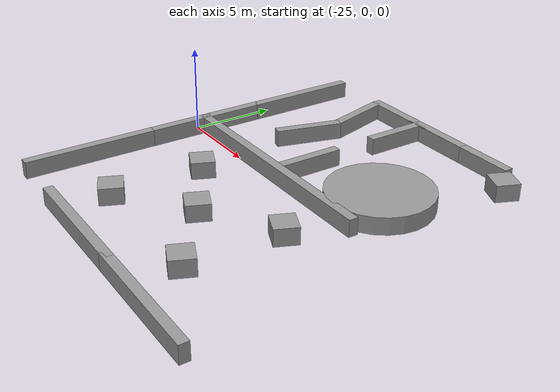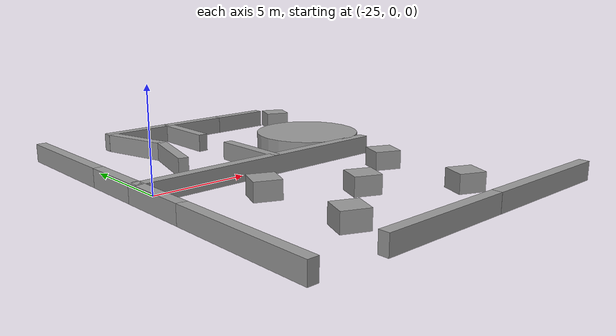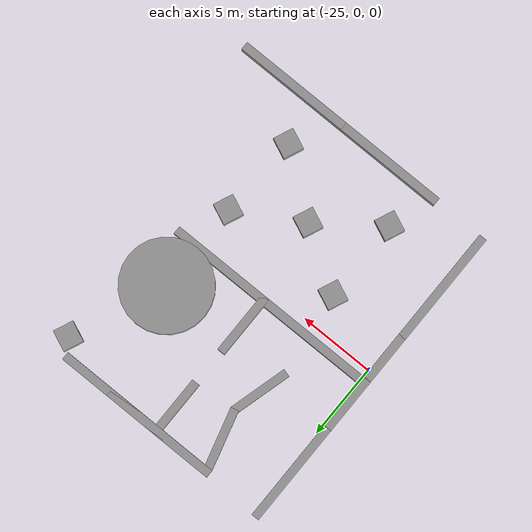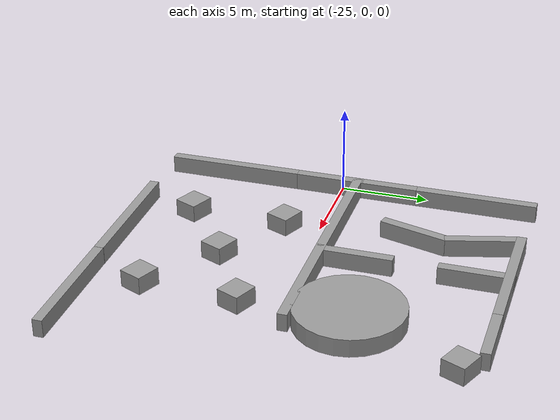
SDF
<sdf version="1.6">
 <model name="Maze01">
  <link name="link_4_clone_0_clone">
   <pose>-17.8012 -10.6509 9e-06 0 -0 0</pose>
   <inertial>
    <mass>4.30693</mass>
    <inertia><ixx>0.46587</ixx><ixy>0</ixy><ixz>0</ixz><iyy>22.6991</iyy><iyz>0</iyz><izz>22.4471</izz></inertia>
   </inertial>
   <visual name="visual">
    <geometry><box><size>7.88951 0.545905 1</size></box></geometry>
    <material>
     <lighting>1</lighting>
     <script><uri>file://media/materials/scripts/gazebo.material</uri><name>Gazebo/Grey</name></script>
     <ambient>0.3 0.3 0.3 1</ambient>
     <diffuse>0.7 0.7 0.7 1</diffuse>
     <specular>0.01 0.01 0.01 1</specular>
     <emissive>0 0 0 1</emissive>
     <shader type="pixel"/>
    </material>
   </visual>
   <collision name="collision">
    <geometry><box><size>7.88951 0.545905 1</size></box></geometry>
    <surface>
     <friction>
      <ode><mu>1</mu><mu2>1</mu2><fdir1>0 0 0</fdir1><slip1>0</slip1><slip2>0</slip2></ode>
      <torsional>
       <coefficient>1</coefficient>
       <patch_radius>0</patch_radius>
       <surface_radius>0</surface_radius>
       <use_patch_radius>1</use_patch_radius>
       <ode><slip>0</slip></ode>
      </torsional>
     </friction>
     <bounce><restitution_coefficient>0</restitution_coefficient><threshold>1e+06</threshold></bounce>
     <contact>
      <collide_without_contact>0</collide_without_contact>
      <collide_without_contact_bitmask>1</collide_without_contact_bitmask>
      <collide_bitmask>1</collide_bitmask>
      <ode>
       <soft_cfm>0</soft_cfm>
       <soft_erp>0.2</soft_erp>
       <kp>1e+13</kp>
       <kd>1</kd>
       <max_vel>0.01</max_vel>
       <min_depth>0</min_depth>
      </ode>
      <bullet>
       <split_impulse>1</split_impulse>
       <split_impulse_penetration_threshold>-0.01</split_impulse_penetration_threshold>
       <soft_cfm>0</soft_cfm>
       <soft_erp>0.2</soft_erp>
       <kp>1e+13</kp>
       <kd>1</kd>
      </bullet>
     </contact>
    </surface>
   </collision>
  </link>
  <link name="link_4_clone_0_clone_clone">
   <pose>-17.57 11.05 9e-06 0 -0 0</pose>
   <inertial>
    <mass>4.30693</mass>
    <inertia><ixx>0.46587</ixx><ixy>0</ixy><ixz>0</ixz><iyy>22.6991</iyy><iyz>0</iyz><izz>22.4471</izz></inertia>
   </inertial>
   <visual name="visual">
    <geometry><box><size>7.88951 0.545905 1</size></box></geometry>
    <material>
     <lighting>1</lighting>
     <script><uri>file://media/materials/scripts/gazebo.material</uri><name>Gazebo/Grey</name></script>
     <ambient>0.3 0.3 0.3 1</ambient>
     <diffuse>0.7 0.7 0.7 1</diffuse>
     <specular>0.01 0.01 0.01 1</specular>
     <emissive>0 0 0 1</emissive>
     <shader type="pixel"/>
    </material>
   </visual>
   <collision name="collision">
    <geometry><box><size>7.88951 0.545905 1</size></box></geometry>
    <surface>
     <friction>
      <ode><mu>1</mu><mu2>1</mu2><fdir1>0 0 0</fdir1><slip1>0</slip1><slip2>0</slip2></ode>
      <torsional>
       <coefficient>1</coefficient>
       <patch_radius>0</patch_radius>
       <surface_radius>0</surface_radius>
       <use_patch_radius>1</use_patch_radius>
       <ode><slip>0</slip></ode>
      </torsional>
     </friction>
     <bounce><restitution_coefficient>0</restitution_coefficient><threshold>1e+06</threshold></bounce>
     <contact>
      <collide_without_contact>0</collide_without_contact>
      <collide_without_contact_bitmask>1</collide_without_contact_bitmask>
      <collide_bitmask>1</collide_bitmask>
      <ode>
       <soft_cfm>0</soft_cfm>
       <soft_erp>0.2</soft_erp>
       <kp>1e+13</kp>
       <kd>1</kd>
       <max_vel>0.01</max_vel>
       <min_depth>0</min_depth>
      </ode>
      <bullet>
       <split_impulse>1</split_impulse>
       <split_impulse_penetration_threshold>-0.01</split_impulse_penetration_threshold>
       <soft_cfm>0</soft_cfm>
       <soft_erp>0.2</soft_erp>
       <kp>1e+13</kp>
       <kd>1</kd>
      </bullet>
     </contact>
    </surface>
   </collision>
  </link>
  <link name="link_4_clone_0_clone_clone_0">
   <pose>-14.0594 11.05 9e-06 0 -0 0</pose>
   <inertial>
    <mass>4.30693</mass>
    <inertia><ixx>0.46587</ixx><ixy>0</ixy><ixz>0</ixz><iyy>22.6991</iyy><iyz>0</iyz><izz>22.4471</izz></inertia>
   </inertial>
   <visual name="visual">
    <geometry><box><size>7.88951 0.545905 1</size></box></geometry>
    <material>
     <lighting>1</lighting>
     <script><uri>file://media/materials/scripts/gazebo.material</uri><name>Gazebo/Grey</name></script>
     <ambient>0.3 0.3 0.3 1</ambient>
     <diffuse>0.7 0.7 0.7 1</diffuse>
     <specular>0.01 0.01 0.01 1</specular>
     <emissive>0 0 0 1</emissive>
     <shader type="pixel"/>
    </material>
   </visual>
   <collision name="collision">
    <geometry><box><size>7.88951 0.545905 1</size></box></geometry>
    <surface>
     <friction>
      <ode><mu>1</mu><mu2>1</mu2><fdir1>0 0 0</fdir1><slip1>0</slip1><slip2>0</slip2></ode>
      <torsional>
       <coefficient>1</coefficient>
       <patch_radius>0</patch_radius>
       <surface_radius>0</surface_radius>
       <use_patch_radius>1</use_patch_radius>
       <ode><slip>0</slip></ode>
      </torsional>
     </friction>
     <bounce><restitution_coefficient>0</restitution_coefficient><threshold>1e+06</threshold></bounce>
     <contact>
      <collide_without_contact>0</collide_without_contact>
      <collide_without_contact_bitmask>1</collide_without_contact_bitmask>
      <collide_bitmask>1</collide_bitmask>
      <ode>
       <soft_cfm>0</soft_cfm>
       <soft_erp>0.2</soft_erp>
       <kp>1e+13</kp>
       <kd>1</kd>
       <max_vel>0.01</max_vel>
       <min_depth>0</min_depth>
      </ode>
      <bullet>
       <split_impulse>1</split_impulse>
       <split_impulse_penetration_threshold>-0.01</split_impulse_penetration_threshold>
       <soft_cfm>0</soft_cfm>
       <soft_erp>0.2</soft_erp>
       <kp>1e+13</kp>
       <kd>1</kd>
      </bullet>
     </contact>
    </surface>
   </collision>
  </link>
  <link name="link_4_clone_0_clone_clone_1">
   <pose>-10.458 -10.6545 9e-06 0 -0 0</pose>
   <inertial>
    <mass>4.30693</mass>
    <inertia><ixx>0.46587</ixx><ixy>0</ixy><ixz>0</ixz><iyy>22.6991</iyy><iyz>0</iyz><izz>22.4471</izz></inertia>
   </inertial>
   <visual name="visual">
    <geometry><box><size>7.88951 0.545905 1</size></box></geometry>
    <material>
     <lighting>1</lighting>
     <script><uri>file://media/materials/scripts/gazebo.material</uri><name>Gazebo/Grey</name></script>
     <ambient>0.3 0.3 0.3 1</ambient>
     <diffuse>0.7 0.7 0.7 1</diffuse>
     <specular>0.01 0.01 0.01 1</specular>
     <emissive>0 0 0 1</emissive>
     <shader type="pixel"/>
    </material>
   </visual>
   <collision name="collision">
    <geometry><box><size>7.88951 0.545905 1</size></box></geometry>
    <surface>
     <friction>
      <ode><mu>1</mu><mu2>1</mu2><fdir1>0 0 0</fdir1><slip1>0</slip1><slip2>0</slip2></ode>
      <torsional>
       <coefficient>1</coefficient>
       <patch_radius>0</patch_radius>
       <surface_radius>0</surface_radius>
       <use_patch_radius>1</use_patch_radius>
       <ode><slip>0</slip></ode>
      </torsional>
     </friction>
     <bounce><restitution_coefficient>0</restitution_coefficient><threshold>1e+06</threshold></bounce>
     <contact>
      <collide_without_contact>0</collide_without_contact>
      <collide_without_contact_bitmask>1</collide_without_contact_bitmask>
      <collide_bitmask>1</collide_bitmask>
      <ode>
       <soft_cfm>0</soft_cfm>
       <soft_erp>0.2</soft_erp>
       <kp>1e+13</kp>
       <kd>1</kd>
       <max_vel>0.01</max_vel>
       <min_depth>0</min_depth>
      </ode>
      <bullet>
       <split_impulse>1</split_impulse>
       <split_impulse_penetration_threshold>-0.01</split_impulse_penetration_threshold>
       <soft_cfm>0</soft_cfm>
       <soft_erp>0.2</soft_erp>
       <kp>1e+13</kp>
       <kd>1</kd>
      </bullet>
     </contact>
    </surface>
   </collision>
  </link>
  <link name="link_4_clone_1">
   <pose>-25.338 -6.80 9e-06 0 0 -1.57</pose>
   <inertial>
    <mass>4.30693</mass>
    <inertia><ixx>0.46587</ixx><ixy>0</ixy><ixz>0</ixz><iyy>22.6991</iyy><iyz>0</iyz><izz>22.4471</izz></inertia>
   </inertial>
   <visual name="visual">
    <geometry><box><size>7.88951 0.545905 1</size></box></geometry>
    <material>
     <lighting>1</lighting>
     <script><uri>file://media/materials/scripts/gazebo.material</uri><name>Gazebo/Grey</name></script>
     <ambient>0.3 0.3 0.3 1</ambient>
     <diffuse>0.7 0.7 0.7 1</diffuse>
     <specular>0.01 0.01 0.01 1</specular>
     <emissive>0 0 0 1</emissive>
     <shader type="pixel"/>
    </material>
   </visual>
   <collision name="collision">
    <geometry><box><size>7.88951 0.545905 1</size></box></geometry>
    <surface>
     <friction>
      <ode><mu>1</mu><mu2>1</mu2><fdir1>0 0 0</fdir1><slip1>0</slip1><slip2>0</slip2></ode>
      <torsional>
       <coefficient>1</coefficient>
       <patch_radius>0</patch_radius>
       <surface_radius>0</surface_radius>
       <use_patch_radius>1</use_patch_radius>
       <ode><slip>0</slip></ode>
      </torsional>
     </friction>
     <bounce><restitution_coefficient>0</restitution_coefficient><threshold>1e+06</threshold></bounce>
     <contact>
      <collide_without_contact>0</collide_without_contact>
      <collide_without_contact_bitmask>1</collide_without_contact_bitmask>
      <collide_bitmask>1</collide_bitmask>
      <ode>
       <soft_cfm>0</soft_cfm>
       <soft_erp>0.2</soft_erp>
       <kp>1e+13</kp>
       <kd>1</kd>
       <max_vel>0.01</max_vel>
       <min_depth>0</min_depth>
      </ode>
      <bullet>
       <split_impulse>1</split_impulse>
       <split_impulse_penetration_threshold>-0.01</split_impulse_penetration_threshold>
       <soft_cfm>0</soft_cfm>
       <soft_erp>0.2</soft_erp>
       <kp>1e+13</kp>
       <kd>1</kd>
      </bullet>
     </contact>
    </surface>
   </collision>
  </link>
  <link name="long_partition">
   <pose>-18 0.76 9e-06 0 0 -3.14</pose>
   <inertial>
    <mass>4.30693</mass>
    <inertia><ixx>0.46587</ixx><ixy>0</ixy><ixz>0</ixz><iyy>22.6991</iyy><iyz>0</iyz><izz>22.4471</izz></inertia>
   </inertial>
   <visual name="visual">
    <geometry><box><size>15 0.545905 1</size></box></geometry>
    <material>
     <lighting>1</lighting>
     <script><uri>file://media/materials/scripts/gazebo.material</uri><name>Gazebo/Grey</name></script>
     <ambient>0.3 0.3 0.3 1</ambient>
     <diffuse>0.7 0.7 0.7 1</diffuse>
     <specular>0.01 0.01 0.01 1</specular>
     <emissive>0 0 0 1</emissive>
     <shader type="pixel"/>
    </material>
   </visual>
   <collision name="collision">
    <geometry><box><size>15 0.545905 1</size></box></geometry>
    <surface>
     <friction>
      <ode><mu>1</mu><mu2>1</mu2><fdir1>0 0 0</fdir1><slip1>0</slip1><slip2>0</slip2></ode>
      <torsional>
       <coefficient>1</coefficient>
       <patch_radius>0</patch_radius>
       <surface_radius>0</surface_radius>
       <use_patch_radius>1</use_patch_radius>
       <ode><slip>0</slip></ode>
      </torsional>
     </friction>
     <bounce><restitution_coefficient>0</restitution_coefficient><threshold>1e+06</threshold></bounce>
     <contact>
      <collide_without_contact>0</collide_without_contact>
      <collide_without_contact_bitmask>1</collide_without_contact_bitmask>
      <collide_bitmask>1</collide_bitmask>
      <ode>
       <soft_cfm>0</soft_cfm>
       <soft_erp>0.2</soft_erp>
       <kp>1e+13</kp>
       <kd>1</kd>
       <max_vel>0.01</max_vel>
       <min_depth>0</min_depth>
      </ode>
      <bullet>
       <split_impulse>1</split_impulse>
       <split_impulse_penetration_threshold>-0.01</split_impulse_penetration_threshold>
       <soft_cfm>0</soft_cfm>
       <soft_erp>0.2</soft_erp>
       <kp>1e+13</kp>
       <kd>1</kd>
      </bullet>
     </contact>
    </surface>
   </collision>
  </link>
  <link name="partition_1">
   <pose>-25.337999 7.825 9e-06 0 0 -1.57</pose>
   <inertial>
    <mass>2.3361</mass>
    <inertia><ixx>0.25269</ixx><ixy>0</ixy><ixz>0</ixz><iyy>3.75965</iyy><iyz>0</iyz><izz>3.62299</izz></inertia>
   </inertial>
   <visual name="visual">
    <geometry><box><size>7 0.545905 1</size></box></geometry>
    <material>
     <lighting>1</lighting>
     <script><uri>file://media/materials/scripts/gazebo.material</uri><name>Gazebo/Grey</name></script>
     <ambient>0.3 0.3 0.3 1</ambient>
     <diffuse>0.7 0.7 0.7 1</diffuse>
     <specular>0.01 0.01 0.01 1</specular>
     <emissive>0 0 0 1</emissive>
     <shader type="pixel"/>
    </material>
   </visual>
   <collision name="collision">
    <geometry><box><size>7 0.545905 1</size></box></geometry>
    <surface>
     <friction>
      <ode><mu>1</mu><mu2>1</mu2><fdir1>0 0 0</fdir1><slip1>0</slip1><slip2>0</slip2></ode>
      <torsional>
       <coefficient>1</coefficient>
       <patch_radius>0</patch_radius>
       <surface_radius>0</surface_radius>
       <use_patch_radius>1</use_patch_radius>
       <ode><slip>0</slip></ode>
      </torsional>
     </friction>
     <bounce><restitution_coefficient>0</restitution_coefficient><threshold>1e+06</threshold></bounce>
     <contact>
      <collide_without_contact>0</collide_without_contact>
      <collide_without_contact_bitmask>1</collide_without_contact_bitmask>
      <collide_bitmask>1</collide_bitmask>
      <ode>
       <soft_cfm>0</soft_cfm>
       <soft_erp>0.2</soft_erp>
       <kp>1e+13</kp>
       <kd>1</kd>
       <max_vel>0.01</max_vel>
       <min_depth>0</min_depth>
      </ode>
      <bullet>
       <split_impulse>1</split_impulse>
       <split_impulse_penetration_threshold>-0.01</split_impulse_penetration_threshold>
       <soft_cfm>0</soft_cfm>
       <soft_erp>0.2</soft_erp>
       <kp>1e+13</kp>
       <kd>1</kd>
      </bullet>
     </contact>
    </surface>
   </collision>
  </link>
  <link name="partition_2">
   <pose>-17.335 2.70 9e-06 0 0 -1.57</pose>
   <inertial>
    <mass>2.3361</mass>
    <inertia><ixx>0.25269</ixx><ixy>0</ixy><ixz>0</ixz><iyy>3.75965</iyy><iyz>0</iyz><izz>3.62299</izz></inertia>
   </inertial>
   <visual name="visual">
    <geometry><box><size>4.27931 0.545905 1</size></box></geometry>
    <material>
     <lighting>1</lighting>
     <script><uri>file://media/materials/scripts/gazebo.material</uri><name>Gazebo/Grey</name></script>
     <ambient>0.3 0.3 0.3 1</ambient>
     <diffuse>0.7 0.7 0.7 1</diffuse>
     <specular>0.01 0.01 0.01 1</specular>
     <emissive>0 0 0 1</emissive>
     <shader type="pixel"/>
    </material>
   </visual>
   <collision name="collision">
    <geometry><box><size>4.27931 0.545905 1</size></box></geometry>
    <surface>
     <friction>
      <ode><mu>1</mu><mu2>1</mu2><fdir1>0 0 0</fdir1><slip1>0</slip1><slip2>0</slip2></ode>
      <torsional>
       <coefficient>1</coefficient>
       <patch_radius>0</patch_radius>
       <surface_radius>0</surface_radius>
       <use_patch_radius>1</use_patch_radius>
       <ode><slip>0</slip></ode>
      </torsional>
     </friction>
     <bounce><restitution_coefficient>0</restitution_coefficient><threshold>1e+06</threshold></bounce>
     <contact>
      <collide_without_contact>0</collide_without_contact>
      <collide_without_contact_bitmask>1</collide_without_contact_bitmask>
      <collide_bitmask>1</collide_bitmask>
      <ode>
       <soft_cfm>0</soft_cfm>
       <soft_erp>0.2</soft_erp>
       <kp>1e+13</kp>
       <kd>1</kd>
       <max_vel>0.01</max_vel>
       <min_depth>0</min_depth>
      </ode>
      <bullet>
       <split_impulse>1</split_impulse>
       <split_impulse_penetration_threshold>-0.01</split_impulse_penetration_threshold>
       <soft_cfm>0</soft_cfm>
       <soft_erp>0.2</soft_erp>
       <kp>1e+13</kp>
       <kd>1</kd>
      </bullet>
     </contact>
    </surface>
   </collision>
  </link>
  <link name="partition_3">
   <pose>-17.335 9.25 9e-06 0 0 -1.57</pose>
   <inertial>
    <mass>1.50003</mass>
    <inertia>
     <ixx>0.162255</ixx>
     <ixy>0</ixy>
     <ixz>0</ixz>
     <iyy>1.06881</iyy>
     <iyz>0</iyz>
     <izz>0.981058</izz>
    </inertia>
   </inertial>
   <visual name="visual">
    <geometry><box><size>4 0.545905 1</size></box></geometry>
    <material>
     <lighting>1</lighting>
     <script><uri>file://media/materials/scripts/gazebo.material</uri><name>Gazebo/Grey</name></script>
     <ambient>0.3 0.3 0.3 1</ambient>
     <diffuse>0.7 0.7 0.7 1</diffuse>
     <specular>0.01 0.01 0.01 1</specular>
     <emissive>0 0 0 1</emissive>
     <shader type="pixel"/>
    </material>
   </visual>
   <collision name="collision">
    <geometry><box><size>4 0.545905 1</size></box></geometry>
    <surface>
     <friction>
      <ode><mu>1</mu><mu2>1</mu2><fdir1>0 0 0</fdir1><slip1>0</slip1><slip2>0</slip2></ode>
      <torsional>
       <coefficient>1</coefficient>
       <patch_radius>0</patch_radius>
       <surface_radius>0</surface_radius>
       <use_patch_radius>1</use_patch_radius>
       <ode><slip>0</slip></ode>
      </torsional>
     </friction>
     <bounce><restitution_coefficient>0</restitution_coefficient><threshold>1e+06</threshold></bounce>
     <contact>
      <collide_without_contact>0</collide_without_contact>
      <collide_without_contact_bitmask>1</collide_without_contact_bitmask>
      <collide_bitmask>1</collide_bitmask>
      <ode>
       <soft_cfm>0</soft_cfm>
       <soft_erp>0.2</soft_erp>
       <kp>1e+13</kp>
       <kd>1</kd>
       <max_vel>0.01</max_vel>
       <min_depth>0</min_depth>
      </ode>
      <bullet>
       <split_impulse>1</split_impulse>
       <split_impulse_penetration_threshold>-0.01</split_impulse_penetration_threshold>
       <soft_cfm>0</soft_cfm>
       <soft_erp>0.2</soft_erp>
       <kp>1e+13</kp>
       <kd>1</kd>
      </bullet>
     </contact>
    </surface>
   </collision>
  </link>
  <link name="partition_5">
   <pose>-20.725001 5.219298 9e-06 0 0 -1.838892</pose>
   <inertial>
    <mass>1.50003</mass>
    <inertia>
     <ixx>0.162255</ixx>
     <ixy>0</ixy>
     <ixz>0</ixz>
     <iyy>1.06881</iyy>
     <iyz>0</iyz>
     <izz>0.981058</izz>
    </inertia>
   </inertial>
   <visual name="visual">
    <geometry><box><size>4 0.545905 1</size></box></geometry>
    <material>
     <lighting>1</lighting>
     <script><uri>file://media/materials/scripts/gazebo.material</uri><name>Gazebo/Grey</name></script>
     <ambient>0.3 0.3 0.3 1</ambient>
     <diffuse>0.7 0.7 0.7 1</diffuse>
     <specular>0.01 0.01 0.01 1</specular>
     <emissive>0 0 0 1</emissive>
     <shader type="pixel"/>
    </material>
   </visual>
   <collision name="collision">
    <geometry><box><size>4 0.545905 1</size></box></geometry>
    <surface>
     <friction>
      <ode><mu>1</mu><mu2>1</mu2><fdir1>0 0 0</fdir1><slip1>0</slip1><slip2>0</slip2></ode>
      <torsional>
       <coefficient>1</coefficient>
       <patch_radius>0</patch_radius>
       <surface_radius>0</surface_radius>
       <use_patch_radius>1</use_patch_radius>
       <ode><slip>0</slip></ode>
      </torsional>
     </friction>
     <bounce><restitution_coefficient>0</restitution_coefficient><threshold>1e+06</threshold></bounce>
     <contact>
      <collide_without_contact>0</collide_without_contact>
      <collide_without_contact_bitmask>1</collide_without_contact_bitmask>
      <collide_bitmask>1</collide_bitmask>
      <ode>
       <soft_cfm>0</soft_cfm>
       <soft_erp>0.2</soft_erp>
       <kp>1e+13</kp>
       <kd>1</kd>
       <max_vel>0.01</max_vel>
       <min_depth>0</min_depth>
      </ode>
      <bullet>
       <split_impulse>1</split_impulse>
       <split_impulse_penetration_threshold>-0.01</split_impulse_penetration_threshold>
       <soft_cfm>0</soft_cfm>
       <soft_erp>0.2</soft_erp>
       <kp>1e+13</kp>
       <kd>1</kd>
      </bullet>
     </contact>
    </surface>
   </collision>
  </link>
  <link name="partition_4">
   <pose>-20.724592 8.928797 9e-06 0 0 -1.305018</pose>
   <inertial>
    <mass>1.50003</mass>
    <inertia>
     <ixx>0.162255</ixx>
     <ixy>0</ixy>
     <ixz>0</ixz>
     <iyy>1.06881</iyy>
     <iyz>0</iyz>
     <izz>0.981058</izz>
    </inertia>
   </inertial>
   <visual name="visual">
    <geometry><box><size>4 0.545905 1</size></box></geometry>
    <material>
     <lighting>1</lighting>
     <script><uri>file://media/materials/scripts/gazebo.material</uri><name>Gazebo/Grey</name></script>
     <ambient>0.3 0.3 0.3 1</ambient>
     <diffuse>0.7 0.7 0.7 1</diffuse>
     <specular>0.01 0.01 0.01 1</specular>
     <emissive>0 0 0 1</emissive>
     <shader type="pixel"/>
    </material>
   </visual>
   <collision name="collision">
    <geometry><box><size>4 0.545905 1</size></box></geometry>
    <surface>
     <friction>
      <ode><mu>1</mu><mu2>1</mu2><fdir1>0 0 0</fdir1><slip1>0</slip1><slip2>0</slip2></ode>
      <torsional>
       <coefficient>1</coefficient>
       <patch_radius>0</patch_radius>
       <surface_radius>0</surface_radius>
       <use_patch_radius>1</use_patch_radius>
       <ode><slip>0</slip></ode>
      </torsional>
     </friction>
     <bounce><restitution_coefficient>0</restitution_coefficient><threshold>1e+06</threshold></bounce>
     <contact>
      <collide_without_contact>0</collide_without_contact>
      <collide_without_contact_bitmask>1</collide_without_contact_bitmask>
      <collide_bitmask>1</collide_bitmask>
      <ode>
       <soft_cfm>0</soft_cfm>
       <soft_erp>0.2</soft_erp>
       <kp>1e+13</kp>
       <kd>1</kd>
       <max_vel>0.01</max_vel>
       <min_depth>0</min_depth>
      </ode>
      <bullet>
       <split_impulse>1</split_impulse>
       <split_impulse_penetration_threshold>-0.01</split_impulse_penetration_threshold>
       <soft_cfm>0</soft_cfm>
       <soft_erp>0.2</soft_erp>
       <kp>1e+13</kp>
       <kd>1</kd>
      </bullet>
     </contact>
    </surface>
   </collision>
  </link>
  <link name="partition_6">
   <pose>-25.338 -0.9 9e-06 0 0 -1.57</pose>
   <inertial>
    <mass>1.50003</mass>
    <inertia>
     <ixx>0.162255</ixx>
     <ixy>0</ixy>
     <ixz>0</ixz>
     <iyy>1.06881</iyy>
     <iyz>0</iyz>
     <izz>0.981058</izz>
    </inertia>
   </inertial>
   <visual name="visual">
    <geometry><box><size>4 0.545905 1</size></box></geometry>
    <material>
     <lighting>1</lighting>
     <script><uri>file://media/materials/scripts/gazebo.material</uri><name>Gazebo/Grey</name></script>
     <ambient>0.3 0.3 0.3 1</ambient>
     <diffuse>0.7 0.7 0.7 1</diffuse>
     <specular>0.01 0.01 0.01 1</specular>
     <emissive>0 0 0 1</emissive>
     <shader type="pixel"/>
    </material>
   </visual>
   <collision name="collision">
    <geometry><box><size>4 0.545905 1</size></box></geometry>
    <surface>
     <friction>
      <ode><mu>1</mu><mu2>1</mu2><fdir1>0 0 0</fdir1><slip1>0</slip1><slip2>0</slip2></ode>
      <torsional>
       <coefficient>1</coefficient>
       <patch_radius>0</patch_radius>
       <surface_radius>0</surface_radius>
       <use_patch_radius>1</use_patch_radius>
       <ode><slip>0</slip></ode>
      </torsional>
     </friction>
     <bounce><restitution_coefficient>0</restitution_coefficient><threshold>1e+06</threshold></bounce>
     <contact>
      <collide_without_contact>0</collide_without_contact>
      <collide_without_contact_bitmask>1</collide_without_contact_bitmask>
      <collide_bitmask>1</collide_bitmask>
      <ode>
       <soft_cfm>0</soft_cfm>
       <soft_erp>0.2</soft_erp>
       <kp>1e+13</kp>
       <kd>1</kd>
       <max_vel>0.01</max_vel>
       <min_depth>0</min_depth>
      </ode>
      <bullet>
       <split_impulse>1</split_impulse>
       <split_impulse_penetration_threshold>-0.01</split_impulse_penetration_threshold>
       <soft_cfm>0</soft_cfm>
       <soft_erp>0.2</soft_erp>
       <kp>1e+13</kp>
       <kd>1</kd>
      </bullet>
     </contact>
    </surface>
   </collision>
  </link>
  <link name="partition_7">
   <pose>-25.338 2.5 9e-06 0 0 -1.57</pose>
   <inertial>
    <mass>1.50003</mass>
    <inertia>
     <ixx>0.162255</ixx>
     <ixy>0</ixy>
     <ixz>0</ixz>
     <iyy>1.06881</iyy>
     <iyz>0</iyz>
     <izz>0.981058</izz>
    </inertia>
   </inertial>
   <visual name="visual">
    <geometry><box><size>4 0.545905 1</size></box></geometry>
    <material>
     <lighting>1</lighting>
     <script><uri>file://media/materials/scripts/gazebo.material</uri><name>Gazebo/Grey</name></script>
     <ambient>0.3 0.3 0.3 1</ambient>
     <diffuse>0.7 0.7 0.7 1</diffuse>
     <specular>0.01 0.01 0.01 1</specular>
     <emissive>0 0 0 1</emissive>
     <shader type="pixel"/>
    </material>
   </visual>
   <collision name="collision">
    <geometry><box><size>4 0.545905 1</size></box></geometry>
    <surface>
     <friction>
      <ode><mu>1</mu><mu2>1</mu2><fdir1>0 0 0</fdir1><slip1>0</slip1><slip2>0</slip2></ode>
      <torsional>
       <coefficient>1</coefficient>
       <patch_radius>0</patch_radius>
       <surface_radius>0</surface_radius>
       <use_patch_radius>1</use_patch_radius>
       <ode><slip>0</slip></ode>
      </torsional>
     </friction>
     <bounce><restitution_coefficient>0</restitution_coefficient><threshold>1e+06</threshold></bounce>
     <contact>
      <collide_without_contact>0</collide_without_contact>
      <collide_without_contact_bitmask>1</collide_without_contact_bitmask>
      <collide_bitmask>1</collide_bitmask>
      <ode>
       <soft_cfm>0</soft_cfm>
       <soft_erp>0.2</soft_erp>
       <kp>1e+13</kp>
       <kd>1</kd>
       <max_vel>0.01</max_vel>
       <min_depth>0</min_depth>
      </ode>
      <bullet>
       <split_impulse>1</split_impulse>
       <split_impulse_penetration_threshold>-0.01</split_impulse_penetration_threshold>
       <soft_cfm>0</soft_cfm>
       <soft_erp>0.2</soft_erp>
       <kp>1e+13</kp>
       <kd>1</kd>
      </bullet>
     </contact>
    </surface>
   </collision>
  </link>
  <link name="obstacle_1">
   <pose>-12.193 3.8 9e-06 0 -0 0</pose>
   <inertial>
    <mass>1</mass>
    <inertia><ixx>0.145833</ixx><ixy>0</ixy><ixz>0</ixz><iyy>0.145833</iyy><iyz>0</iyz><izz>0.125</izz></inertia>
   </inertial>
   <visual name="visual">
    <geometry><cylinder><radius>3</radius><length>1</length></cylinder></geometry>
    <material>
     <lighting>1</lighting>
     <script><uri>file://media/materials/scripts/gazebo.material</uri><name>Gazebo/Grey</name></script>
     <ambient>0.3 0.3 0.3 1</ambient>
     <diffuse>0.7 0.7 0.7 1</diffuse>
     <specular>0.01 0.01 0.01 1</specular>
     <emissive>0 0 0 1</emissive>
    </material>
   </visual>
   <collision name="collision">
    <geometry><cylinder><radius>3</radius><length>1</length></cylinder></geometry>
    <surface>
     <friction>
      <ode><mu>1</mu><mu2>1</mu2><fdir1>0 0 0</fdir1><slip1>0</slip1><slip2>0</slip2></ode>
      <torsional>
       <coefficient>1</coefficient>
       <patch_radius>0</patch_radius>
       <surface_radius>0</surface_radius>
       <use_patch_radius>1</use_patch_radius>
       <ode><slip>0</slip></ode>
      </torsional>
     </friction>
     <bounce><restitution_coefficient>0</restitution_coefficient><threshold>1e+06</threshold></bounce>
     <contact>
      <collide_without_contact>0</collide_without_contact>
      <collide_without_contact_bitmask>1</collide_without_contact_bitmask>
      <collide_bitmask>1</collide_bitmask>
      <ode>
       <soft_cfm>0</soft_cfm>
       <soft_erp>0.2</soft_erp>
       <kp>1e+13</kp>
       <kd>1</kd>
       <max_vel>0.01</max_vel>
       <min_depth>0</min_depth>
      </ode>
      <bullet>
       <split_impulse>1</split_impulse>
       <split_impulse_penetration_threshold>-0.01</split_impulse_penetration_threshold>
       <soft_cfm>0</soft_cfm>
       <soft_erp>0.2</soft_erp>
       <kp>1e+13</kp>
       <kd>1</kd>
      </bullet>
     </contact>
    </surface>
   </collision>
  </link>
  <link name="link_6">
   <pose>-12.4356 -7.69108 9e-06 0 0 -0.406538</pose>
   <inertial>
    <mass>1.94722</mass>
    <inertia><ixx>0.463684</ixx><ixy>0</ixy><ixz>0</ixz><iyy>0.4935</iyy><iyz>0</iyz><izz>0.632648</izz></inertia>
   </inertial>
   <visual name="visual">
    <geometry><box><size>1.42873 1.36291 1</size></box></geometry>
    <material>
     <lighting>1</lighting>
     <script><uri>file://media/materials/scripts/gazebo.material</uri><name>Gazebo/Grey</name></script>
     <ambient>0.3 0.3 0.3 1</ambient>
     <diffuse>0.7 0.7 0.7 1</diffuse>
     <specular>0.01 0.01 0.01 1</specular>
     <emissive>0 0 0 1</emissive>
    </material>
   </visual>
   <collision name="collision">
    <geometry><box><size>1.42873 1.36291 1</size></box></geometry>
    <surface>
     <friction>
      <ode><mu>1</mu><mu2>1</mu2><fdir1>0 0 0</fdir1><slip1>0</slip1><slip2>0</slip2></ode>
      <torsional>
       <coefficient>1</coefficient>
       <patch_radius>0</patch_radius>
       <surface_radius>0</surface_radius>
       <use_patch_radius>1</use_patch_radius>
       <ode><slip>0</slip></ode>
      </torsional>
     </friction>
     <bounce><restitution_coefficient>0</restitution_coefficient><threshold>1e+06</threshold></bounce>
     <contact>
      <collide_without_contact>0</collide_without_contact>
      <collide_without_contact_bitmask>1</collide_without_contact_bitmask>
      <collide_bitmask>1</collide_bitmask>
      <ode>
       <soft_cfm>0</soft_cfm>
       <soft_erp>0.2</soft_erp>
       <kp>1e+13</kp>
       <kd>1</kd>
       <max_vel>0.01</max_vel>
       <min_depth>0</min_depth>
      </ode>
      <bullet>
       <split_impulse>1</split_impulse>
       <split_impulse_penetration_threshold>-0.01</split_impulse_penetration_threshold>
       <soft_cfm>0</soft_cfm>
       <soft_erp>0.2</soft_erp>
       <kp>1e+13</kp>
       <kd>1</kd>
      </bullet>
     </contact>
    </surface>
   </collision>
  </link>
  <link name="engine_1">
   <pose>-9.5 10.0 9e-06 0 0 -0.406538</pose>
   <inertial>
    <mass>1.94722</mass>
    <inertia><ixx>0.463684</ixx><ixy>0</ixy><ixz>0</ixz><iyy>0.4935</iyy><iyz>0</iyz><izz>0.632648</izz></inertia>
   </inertial>
   <visual name="visual">
    <geometry><box><size>1.42873 1.36291 1</size></box></geometry>
    <material>
     <lighting>1</lighting>
     <script><uri>file://media/materials/scripts/gazebo.material</uri><name>Gazebo/Grey</name></script>
     <ambient>0.3 0.3 0.3 1</ambient>
     <diffuse>0.7 0.7 0.7 1</diffuse>
     <specular>0.01 0.01 0.01 1</specular>
     <emissive>0 0 0 1</emissive>
    </material>
   </visual>
   <collision name="collision">
    <geometry><box><size>1.42873 1.36291 1</size></box></geometry>
    <surface>
     <friction>
      <ode><mu>1</mu><mu2>1</mu2><fdir1>0 0 0</fdir1><slip1>0</slip1><slip2>0</slip2></ode>
      <torsional>
       <coefficient>1</coefficient>
       <patch_radius>0</patch_radius>
       <surface_radius>0</surface_radius>
       <use_patch_radius>1</use_patch_radius>
       <ode><slip>0</slip></ode>
      </torsional>
     </friction>
     <bounce><restitution_coefficient>0</restitution_coefficient><threshold>1e+06</threshold></bounce>
     <contact>
      <collide_without_contact>0</collide_without_contact>
      <collide_without_contact_bitmask>1</collide_without_contact_bitmask>
      <collide_bitmask>1</collide_bitmask>
      <ode>
       <soft_cfm>0</soft_cfm>
       <soft_erp>0.2</soft_erp>
       <kp>1e+13</kp>
       <kd>1</kd>
       <max_vel>0.01</max_vel>
       <min_depth>0</min_depth>
      </ode>
      <bullet>
       <split_impulse>1</split_impulse>
       <split_impulse_penetration_threshold>-0.01</split_impulse_penetration_threshold>
       <soft_cfm>0</soft_cfm>
       <soft_erp>0.2</soft_erp>
       <kp>1e+13</kp>
       <kd>1</kd>
      </bullet>
     </contact>
    </surface>
   </collision>
  </link>
  <link name="center_box">
   <pose>-16.4356 -4.6910 9e-06 0 0 -0.406538</pose>
   <inertial>
    <mass>1.94722</mass>
    <inertia><ixx>0.463684</ixx><ixy>0</ixy><ixz>0</ixz><iyy>0.4935</iyy><iyz>0</iyz><izz>0.632648</izz></inertia>
   </inertial>
   <visual name="visual">
    <geometry><box><size>1.42873 1.36291 1</size></box></geometry>
    <material>
     <lighting>1</lighting>
     <script><uri>file://media/materials/scripts/gazebo.material</uri><name>Gazebo/Grey</name></script>
     <ambient>0.3 0.3 0.3 1</ambient>
     <diffuse>0.7 0.7 0.7 1</diffuse>
     <specular>0.01 0.01 0.01 1</specular>
     <emissive>0 0 0 1</emissive>
    </material>
   </visual>
   <collision name="collision">
    <geometry><box><size>1.42873 1.36291 1</size></box></geometry>
    <surface>
     <friction>
      <ode><mu>1</mu><mu2>1</mu2><fdir1>0 0 0</fdir1><slip1>0</slip1><slip2>0</slip2></ode>
      <torsional>
       <coefficient>1</coefficient>
       <patch_radius>0</patch_radius>
       <surface_radius>0</surface_radius>
       <use_patch_radius>1</use_patch_radius>
       <ode><slip>0</slip></ode>
      </torsional>
     </friction>
     <bounce><restitution_coefficient>0</restitution_coefficient><threshold>1e+06</threshold></bounce>
     <contact>
      <collide_without_contact>0</collide_without_contact>
      <collide_without_contact_bitmask>1</collide_without_contact_bitmask>
      <collide_bitmask>1</collide_bitmask>
      <ode>
       <soft_cfm>0</soft_cfm>
       <soft_erp>0.2</soft_erp>
       <kp>1e+13</kp>
       <kd>1</kd>
       <max_vel>0.01</max_vel>
       <min_depth>0</min_depth>
      </ode>
      <bullet>
       <split_impulse>1</split_impulse>
       <split_impulse_penetration_threshold>-0.01</split_impulse_penetration_threshold>
       <soft_cfm>0</soft_cfm>
       <soft_erp>0.2</soft_erp>
       <kp>1e+13</kp>
       <kd>1</kd>
      </bullet>
     </contact>
    </surface>
   </collision>
  </link>
  <link name="bottom_left_box">
   <pose>-20.4356 -2.207440 9e-06 0 0 -0.406538</pose>
   <inertial>
    <mass>1.94722</mass>
    <inertia><ixx>0.463684</ixx><ixy>0</ixy><ixz>0</ixz><iyy>0.4935</iyy><iyz>0</iyz><izz>0.632648</izz></inertia>
   </inertial>
   <visual name="visual">
    <geometry><box><size>1.42873 1.36291 1</size></box></geometry>
    <material>
     <lighting>1</lighting>
     <script><uri>file://media/materials/scripts/gazebo.material</uri><name>Gazebo/Grey</name></script>
     <ambient>0.3 0.3 0.3 1</ambient>
     <diffuse>0.7 0.7 0.7 1</diffuse>
     <specular>0.01 0.01 0.01 1</specular>
     <emissive>0 0 0 1</emissive>
    </material>
   </visual>
   <collision name="collision">
    <geometry><box><size>1.42873 1.36291 1</size></box></geometry>
    <surface>
     <friction>
      <ode><mu>1</mu><mu2>1</mu2><fdir1>0 0 0</fdir1><slip1>0</slip1><slip2>0</slip2></ode>
      <torsional>
       <coefficient>1</coefficient>
       <patch_radius>0</patch_radius>
       <surface_radius>0</surface_radius>
       <use_patch_radius>1</use_patch_radius>
       <ode><slip>0</slip></ode>
      </torsional>
     </friction>
     <bounce><restitution_coefficient>0</restitution_coefficient><threshold>1e+06</threshold></bounce>
     <contact>
      <collide_without_contact>0</collide_without_contact>
      <collide_without_contact_bitmask>1</collide_without_contact_bitmask>
      <collide_bitmask>1</collide_bitmask>
      <ode>
       <soft_cfm>0</soft_cfm>
       <soft_erp>0.2</soft_erp>
       <kp>1e+13</kp>
       <kd>1</kd>
       <max_vel>0.01</max_vel>
       <min_depth>0</min_depth>
      </ode>
      <bullet>
       <split_impulse>1</split_impulse>
       <split_impulse_penetration_threshold>-0.01</split_impulse_penetration_threshold>
       <soft_cfm>0</soft_cfm>
       <soft_erp>0.2</soft_erp>
       <kp>1e+13</kp>
       <kd>1</kd>
      </bullet>
     </contact>
    </surface>
   </collision>
  </link>
  <link name="bottom_right_box">
   <pose>-20.4356 -7.69108 9e-06 0 0 -0.406538</pose>
   <inertial>
    <mass>1.94722</mass>
    <inertia><ixx>0.463684</ixx><ixy>0</ixy><ixz>0</ixz><iyy>0.4935</iyy><iyz>0</iyz><izz>0.632648</izz></inertia>
   </inertial>
   <visual name="visual">
    <geometry><box><size>1.42873 1.36291 1</size></box></geometry>
    <material>
     <lighting>1</lighting>
     <script><uri>file://media/materials/scripts/gazebo.material</uri><name>Gazebo/Grey</name></script>
     <ambient>0.3 0.3 0.3 1</ambient>
     <diffuse>0.7 0.7 0.7 1</diffuse>
     <specular>0.01 0.01 0.01 1</specular>
     <emissive>0 0 0 1</emissive>
    </material>
   </visual>
   <collision name="collision">
    <geometry><box><size>1.42873 1.36291 1</size></box></geometry>
    <surface>
     <friction>
      <ode><mu>1</mu><mu2>1</mu2><fdir1>0 0 0</fdir1><slip1>0</slip1><slip2>0</slip2></ode>
      <torsional>
       <coefficient>1</coefficient>
       <patch_radius>0</patch_radius>
       <surface_radius>0</surface_radius>
       <use_patch_radius>1</use_patch_radius>
       <ode><slip>0</slip></ode>
      </torsional>
     </friction>
     <bounce><restitution_coefficient>0</restitution_coefficient><threshold>1e+06</threshold></bounce>
     <contact>
      <collide_without_contact>0</collide_without_contact>
      <collide_without_contact_bitmask>1</collide_without_contact_bitmask>
      <collide_bitmask>1</collide_bitmask>
      <ode>
       <soft_cfm>0</soft_cfm>
       <soft_erp>0.2</soft_erp>
       <kp>1e+13</kp>
       <kd>1</kd>
       <max_vel>0.01</max_vel>
       <min_depth>0</min_depth>
      </ode>
      <bullet>
       <split_impulse>1</split_impulse>
       <split_impulse_penetration_threshold>-0.01</split_impulse_penetration_threshold>
       <soft_cfm>0</soft_cfm>
       <soft_erp>0.2</soft_erp>
       <kp>1e+13</kp>
       <kd>1</kd>
      </bullet>
     </contact>
    </surface>
   </collision>
  </link>
  <link name="link_6_clone">
   <pose>-12.1551 -2.20744 9e-06 0 0 -0.406538</pose>
   <inertial>
    <mass>1.94722</mass>
    <inertia><ixx>0.463684</ixx><ixy>0</ixy><ixz>0</ixz><iyy>0.4935</iyy><iyz>0</iyz><izz>0.632648</izz></inertia>
   </inertial>
   <visual name="visual">
    <geometry><box><size>1.42873 1.36291 1</size></box></geometry>
    <material>
     <lighting>1</lighting>
     <script><uri>file://media/materials/scripts/gazebo.material</uri><name>Gazebo/Grey</name></script>
     <ambient>0.3 0.3 0.3 1</ambient>
     <diffuse>0.7 0.7 0.7 1</diffuse>
     <specular>0.01 0.01 0.01 1</specular>
     <emissive>0 0 0 1</emissive>
     <shader type="pixel"/>
    </material>
   </visual>
   <collision name="collision">
    <geometry><box><size>1.42873 1.36291 1</size></box></geometry>
    <surface>
     <friction>
      <ode><mu>1</mu><mu2>1</mu2><fdir1>0 0 0</fdir1><slip1>0</slip1><slip2>0</slip2></ode>
      <torsional>
       <coefficient>1</coefficient>
       <patch_radius>0</patch_radius>
       <surface_radius>0</surface_radius>
       <use_patch_radius>1</use_patch_radius>
       <ode><slip>0</slip></ode>
      </torsional>
     </friction>
     <bounce><restitution_coefficient>0</restitution_coefficient><threshold>1e+06</threshold></bounce>
     <contact>
      <collide_without_contact>0</collide_without_contact>
      <collide_without_contact_bitmask>1</collide_without_contact_bitmask>
      <collide_bitmask>1</collide_bitmask>
      <ode>
       <soft_cfm>0</soft_cfm>
       <soft_erp>0.2</soft_erp>
       <kp>1e+13</kp>
       <kd>1</kd>
       <max_vel>0.01</max_vel>
       <min_depth>0</min_depth>
      </ode>
      <bullet>
       <split_impulse>1</split_impulse>
       <split_impulse_penetration_threshold>-0.01</split_impulse_penetration_threshold>
       <soft_cfm>0</soft_cfm>
       <soft_erp>0.2</soft_erp>
       <kp>1e+13</kp>
       <kd>1</kd>
      </bullet>
     </contact>
    </surface>
   </collision>
  </link>
  <static>0</static>
 </model>
</sdf>
